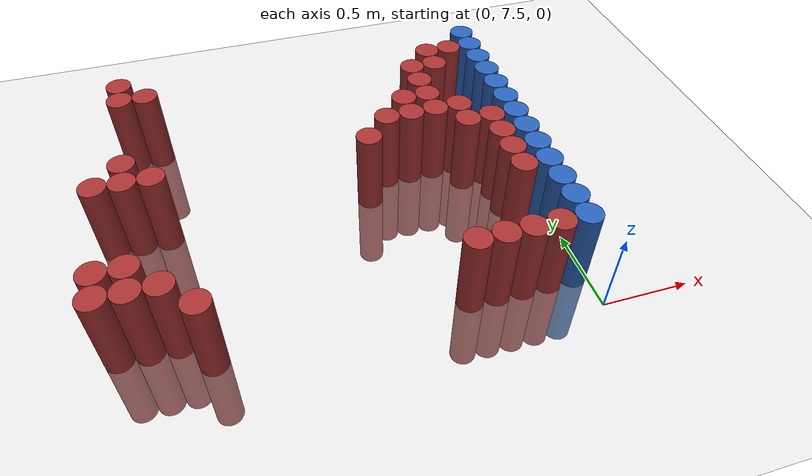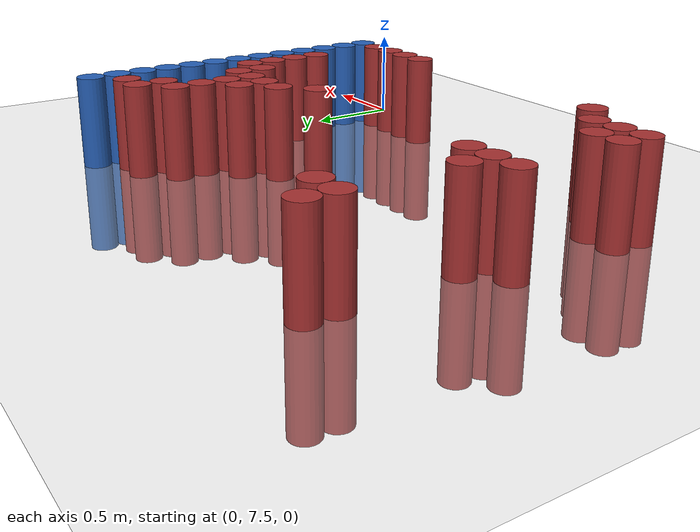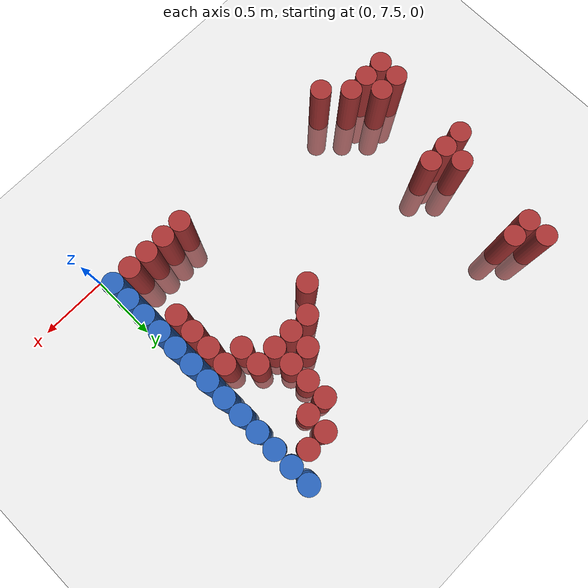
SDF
<sdf version="1.6">
 <world name="default">
  <model name="ground_plane">
   <static>1</static>
   <link name="link">
    <collision name="collision">
     <geometry><plane><normal>0 0 1</normal><size>100 100</size></plane></geometry>
     <surface><friction><ode><mu>100</mu><mu2>50</mu2></ode></friction></surface>
    </collision>
    <visual name="visual">
     <cast_shadows>0</cast_shadows>
     <geometry><plane><normal>0 0 1</normal><size>100 100</size></plane></geometry>
     <material>
      <script><uri>file://media/materials/scripts/gazebo.material</uri><name>Gazebo/Grey</name></script>
     </material>
    </visual>
   </link>
  </model>
  <model name="unit_cylinder_226">
   <static>1</static>
   <pose>-2.475000 7.875000 0.000000 0.000000 0.000000 0.000000</pose>
   <link name="link">
    <inertial>
     <mass>1</mass>
     <inertia><ixx>0.145833</ixx><ixy>0</ixy><ixz>0</ixz><iyy>0.145833</iyy><iyz>0</iyz><izz>0.125</izz></inertia>
    </inertial>
    <collision name="collision">
     <geometry><cylinder><radius>0.075000</radius><length>1</length></cylinder></geometry>
    </collision>
    <visual name="visual">
     <geometry><cylinder><radius>0.075000</radius><length>1</length></cylinder></geometry>
     <material>
      <ambient>0.648000 0.192000 0.192000 1</ambient>
      <diffuse>0.648000 0.192000 0.192000 1</diffuse>
     </material>
     <material>
      <script><name>Gazebo/Grey</name><uri>file://media/materials/scripts/gazebo.material</uri></script>
     </material>
    </visual>
   </link>
  </model>
  <model name="unit_cylinder_227">
   <static>1</static>
   <pose>-2.475000 8.025000 0.000000 0.000000 0.000000 0.000000</pose>
   <link name="link">
    <inertial>
     <mass>1</mass>
     <inertia><ixx>0.145833</ixx><ixy>0</ixy><ixz>0</ixz><iyy>0.145833</iyy><iyz>0</iyz><izz>0.125</izz></inertia>
    </inertial>
    <collision name="collision">
     <geometry><cylinder><radius>0.075000</radius><length>1</length></cylinder></geometry>
    </collision>
    <visual name="visual">
     <geometry><cylinder><radius>0.075000</radius><length>1</length></cylinder></geometry>
     <material>
      <ambient>0.648000 0.192000 0.192000 1</ambient>
      <diffuse>0.648000 0.192000 0.192000 1</diffuse>
     </material>
     <material>
      <script><name>Gazebo/Grey</name><uri>file://media/materials/scripts/gazebo.material</uri></script>
     </material>
    </visual>
   </link>
  </model>
  <model name="unit_cylinder_228">
   <static>1</static>
   <pose>-2.475000 8.625000 0.000000 0.000000 0.000000 0.000000</pose>
   <link name="link">
    <inertial>
     <mass>1</mass>
     <inertia><ixx>0.145833</ixx><ixy>0</ixy><ixz>0</ixz><iyy>0.145833</iyy><iyz>0</iyz><izz>0.125</izz></inertia>
    </inertial>
    <collision name="collision">
     <geometry><cylinder><radius>0.075000</radius><length>1</length></cylinder></geometry>
    </collision>
    <visual name="visual">
     <geometry><cylinder><radius>0.075000</radius><length>1</length></cylinder></geometry>
     <material>
      <ambient>0.648000 0.192000 0.192000 1</ambient>
      <diffuse>0.648000 0.192000 0.192000 1</diffuse>
     </material>
     <material>
      <script><name>Gazebo/Grey</name><uri>file://media/materials/scripts/gazebo.material</uri></script>
     </material>
    </visual>
   </link>
  </model>
  <model name="unit_cylinder_230">
   <static>1</static>
   <pose>-2.325000 7.875000 0.000000 0.000000 0.000000 0.000000</pose>
   <link name="link">
    <inertial>
     <mass>1</mass>
     <inertia><ixx>0.145833</ixx><ixy>0</ixy><ixz>0</ixz><iyy>0.145833</iyy><iyz>0</iyz><izz>0.125</izz></inertia>
    </inertial>
    <collision name="collision">
     <geometry><cylinder><radius>0.075000</radius><length>1</length></cylinder></geometry>
    </collision>
    <visual name="visual">
     <geometry><cylinder><radius>0.075000</radius><length>1</length></cylinder></geometry>
     <material>
      <ambient>0.648000 0.192000 0.192000 1</ambient>
      <diffuse>0.648000 0.192000 0.192000 1</diffuse>
     </material>
     <material>
      <script><name>Gazebo/Grey</name><uri>file://media/materials/scripts/gazebo.material</uri></script>
     </material>
    </visual>
   </link>
  </model>
  <model name="unit_cylinder_231">
   <static>1</static>
   <pose>-2.325000 8.025000 0.000000 0.000000 0.000000 0.000000</pose>
   <link name="link">
    <inertial>
     <mass>1</mass>
     <inertia><ixx>0.145833</ixx><ixy>0</ixy><ixz>0</ixz><iyy>0.145833</iyy><iyz>0</iyz><izz>0.125</izz></inertia>
    </inertial>
    <collision name="collision">
     <geometry><cylinder><radius>0.075000</radius><length>1</length></cylinder></geometry>
    </collision>
    <visual name="visual">
     <geometry><cylinder><radius>0.075000</radius><length>1</length></cylinder></geometry>
     <material>
      <ambient>0.648000 0.192000 0.192000 1</ambient>
      <diffuse>0.648000 0.192000 0.192000 1</diffuse>
     </material>
     <material>
      <script><name>Gazebo/Grey</name><uri>file://media/materials/scripts/gazebo.material</uri></script>
     </material>
    </visual>
   </link>
  </model>
  <model name="unit_cylinder_232">
   <static>1</static>
   <pose>-2.325000 8.625000 0.000000 0.000000 0.000000 0.000000</pose>
   <link name="link">
    <inertial>
     <mass>1</mass>
     <inertia><ixx>0.145833</ixx><ixy>0</ixy><ixz>0</ixz><iyy>0.145833</iyy><iyz>0</iyz><izz>0.125</izz></inertia>
    </inertial>
    <collision name="collision">
     <geometry><cylinder><radius>0.075000</radius><length>1</length></cylinder></geometry>
    </collision>
    <visual name="visual">
     <geometry><cylinder><radius>0.075000</radius><length>1</length></cylinder></geometry>
     <material>
      <ambient>0.648000 0.192000 0.192000 1</ambient>
      <diffuse>0.648000 0.192000 0.192000 1</diffuse>
     </material>
     <material>
      <script><name>Gazebo/Grey</name><uri>file://media/materials/scripts/gazebo.material</uri></script>
     </material>
    </visual>
   </link>
  </model>
  <model name="unit_cylinder_233">
   <static>1</static>
   <pose>-2.325000 8.775000 0.000000 0.000000 0.000000 0.000000</pose>
   <link name="link">
    <inertial>
     <mass>1</mass>
     <inertia><ixx>0.145833</ixx><ixy>0</ixy><ixz>0</ixz><iyy>0.145833</iyy><iyz>0</iyz><izz>0.125</izz></inertia>
    </inertial>
    <collision name="collision">
     <geometry><cylinder><radius>0.075000</radius><length>1</length></cylinder></geometry>
    </collision>
    <visual name="visual">
     <geometry><cylinder><radius>0.075000</radius><length>1</length></cylinder></geometry>
     <material>
      <ambient>0.648000 0.192000 0.192000 1</ambient>
      <diffuse>0.648000 0.192000 0.192000 1</diffuse>
     </material>
     <material>
      <script><name>Gazebo/Grey</name><uri>file://media/materials/scripts/gazebo.material</uri></script>
     </material>
    </visual>
   </link>
  </model>
  <model name="unit_cylinder_234">
   <static>1</static>
   <pose>-2.325000 9.375000 0.000000 0.000000 0.000000 0.000000</pose>
   <link name="link">
    <inertial>
     <mass>1</mass>
     <inertia><ixx>0.145833</ixx><ixy>0</ixy><ixz>0</ixz><iyy>0.145833</iyy><iyz>0</iyz><izz>0.125</izz></inertia>
    </inertial>
    <collision name="collision">
     <geometry><cylinder><radius>0.075000</radius><length>1</length></cylinder></geometry>
    </collision>
    <visual name="visual">
     <geometry><cylinder><radius>0.075000</radius><length>1</length></cylinder></geometry>
     <material>
      <ambient>0.648000 0.192000 0.192000 1</ambient>
      <diffuse>0.648000 0.192000 0.192000 1</diffuse>
     </material>
     <material>
      <script><name>Gazebo/Grey</name><uri>file://media/materials/scripts/gazebo.material</uri></script>
     </material>
    </visual>
   </link>
  </model>
  <model name="unit_cylinder_235">
   <static>1</static>
   <pose>-2.325000 9.525000 0.000000 0.000000 0.000000 0.000000</pose>
   <link name="link">
    <inertial>
     <mass>1</mass>
     <inertia><ixx>0.145833</ixx><ixy>0</ixy><ixz>0</ixz><iyy>0.145833</iyy><iyz>0</iyz><izz>0.125</izz></inertia>
    </inertial>
    <collision name="collision">
     <geometry><cylinder><radius>0.075000</radius><length>1</length></cylinder></geometry>
    </collision>
    <visual name="visual">
     <geometry><cylinder><radius>0.075000</radius><length>1</length></cylinder></geometry>
     <material>
      <ambient>0.648000 0.192000 0.192000 1</ambient>
      <diffuse>0.648000 0.192000 0.192000 1</diffuse>
     </material>
     <material>
      <script><name>Gazebo/Grey</name><uri>file://media/materials/scripts/gazebo.material</uri></script>
     </material>
    </visual>
   </link>
  </model>
  <model name="unit_cylinder_239">
   <static>1</static>
   <pose>-2.175000 7.875000 0.000000 0.000000 0.000000 0.000000</pose>
   <link name="link">
    <inertial>
     <mass>1</mass>
     <inertia><ixx>0.145833</ixx><ixy>0</ixy><ixz>0</ixz><iyy>0.145833</iyy><iyz>0</iyz><izz>0.125</izz></inertia>
    </inertial>
    <collision name="collision">
     <geometry><cylinder><radius>0.075000</radius><length>1</length></cylinder></geometry>
    </collision>
    <visual name="visual">
     <geometry><cylinder><radius>0.075000</radius><length>1</length></cylinder></geometry>
     <material>
      <ambient>0.648000 0.192000 0.192000 1</ambient>
      <diffuse>0.648000 0.192000 0.192000 1</diffuse>
     </material>
     <material>
      <script><name>Gazebo/Grey</name><uri>file://media/materials/scripts/gazebo.material</uri></script>
     </material>
    </visual>
   </link>
  </model>
  <model name="unit_cylinder_240">
   <static>1</static>
   <pose>-2.175000 8.625000 0.000000 0.000000 0.000000 0.000000</pose>
   <link name="link">
    <inertial>
     <mass>1</mass>
     <inertia><ixx>0.145833</ixx><ixy>0</ixy><ixz>0</ixz><iyy>0.145833</iyy><iyz>0</iyz><izz>0.125</izz></inertia>
    </inertial>
    <collision name="collision">
     <geometry><cylinder><radius>0.075000</radius><length>1</length></cylinder></geometry>
    </collision>
    <visual name="visual">
     <geometry><cylinder><radius>0.075000</radius><length>1</length></cylinder></geometry>
     <material>
      <ambient>0.648000 0.192000 0.192000 1</ambient>
      <diffuse>0.648000 0.192000 0.192000 1</diffuse>
     </material>
     <material>
      <script><name>Gazebo/Grey</name><uri>file://media/materials/scripts/gazebo.material</uri></script>
     </material>
    </visual>
   </link>
  </model>
  <model name="unit_cylinder_241">
   <static>1</static>
   <pose>-2.175000 9.375000 0.000000 0.000000 0.000000 0.000000</pose>
   <link name="link">
    <inertial>
     <mass>1</mass>
     <inertia><ixx>0.145833</ixx><ixy>0</ixy><ixz>0</ixz><iyy>0.145833</iyy><iyz>0</iyz><izz>0.125</izz></inertia>
    </inertial>
    <collision name="collision">
     <geometry><cylinder><radius>0.075000</radius><length>1</length></cylinder></geometry>
    </collision>
    <visual name="visual">
     <geometry><cylinder><radius>0.075000</radius><length>1</length></cylinder></geometry>
     <material>
      <ambient>0.648000 0.192000 0.192000 1</ambient>
      <diffuse>0.648000 0.192000 0.192000 1</diffuse>
     </material>
     <material>
      <script><name>Gazebo/Grey</name><uri>file://media/materials/scripts/gazebo.material</uri></script>
     </material>
    </visual>
   </link>
  </model>
  <model name="unit_cylinder_244">
   <static>1</static>
   <pose>-2.025000 7.725000 0.000000 0.000000 0.000000 0.000000</pose>
   <link name="link">
    <inertial>
     <mass>1</mass>
     <inertia><ixx>0.145833</ixx><ixy>0</ixy><ixz>0</ixz><iyy>0.145833</iyy><iyz>0</iyz><izz>0.125</izz></inertia>
    </inertial>
    <collision name="collision">
     <geometry><cylinder><radius>0.075000</radius><length>1</length></cylinder></geometry>
    </collision>
    <visual name="visual">
     <geometry><cylinder><radius>0.075000</radius><length>1</length></cylinder></geometry>
     <material>
      <ambient>0.648000 0.192000 0.192000 1</ambient>
      <diffuse>0.648000 0.192000 0.192000 1</diffuse>
     </material>
     <material>
      <script><name>Gazebo/Grey</name><uri>file://media/materials/scripts/gazebo.material</uri></script>
     </material>
    </visual>
   </link>
  </model>
  <model name="unit_cylinder_255">
   <static>1</static>
   <pose>-0.975000 8.625000 0.000000 0.000000 0.000000 0.000000</pose>
   <link name="link">
    <inertial>
     <mass>1</mass>
     <inertia><ixx>0.145833</ixx><ixy>0</ixy><ixz>0</ixz><iyy>0.145833</iyy><iyz>0</iyz><izz>0.125</izz></inertia>
    </inertial>
    <collision name="collision">
     <geometry><cylinder><radius>0.075000</radius><length>1</length></cylinder></geometry>
    </collision>
    <visual name="visual">
     <geometry><cylinder><radius>0.075000</radius><length>1</length></cylinder></geometry>
     <material>
      <ambient>0.648000 0.192000 0.192000 1</ambient>
      <diffuse>0.648000 0.192000 0.192000 1</diffuse>
     </material>
     <material>
      <script><name>Gazebo/Grey</name><uri>file://media/materials/scripts/gazebo.material</uri></script>
     </material>
    </visual>
   </link>
  </model>
  <model name="unit_cylinder_257">
   <static>1</static>
   <pose>-0.825000 8.775000 0.000000 0.000000 0.000000 0.000000</pose>
   <link name="link">
    <inertial>
     <mass>1</mass>
     <inertia><ixx>0.145833</ixx><ixy>0</ixy><ixz>0</ixz><iyy>0.145833</iyy><iyz>0</iyz><izz>0.125</izz></inertia>
    </inertial>
    <collision name="collision">
     <geometry><cylinder><radius>0.075000</radius><length>1</length></cylinder></geometry>
    </collision>
    <visual name="visual">
     <geometry><cylinder><radius>0.075000</radius><length>1</length></cylinder></geometry>
     <material>
      <ambient>0.648000 0.192000 0.192000 1</ambient>
      <diffuse>0.648000 0.192000 0.192000 1</diffuse>
     </material>
     <material>
      <script><name>Gazebo/Grey</name><uri>file://media/materials/scripts/gazebo.material</uri></script>
     </material>
    </visual>
   </link>
  </model>
  <model name="unit_cylinder_260">
   <static>1</static>
   <pose>-0.675000 7.725000 0.000000 0.000000 0.000000 0.000000</pose>
   <link name="link">
    <inertial>
     <mass>1</mass>
     <inertia><ixx>0.145833</ixx><ixy>0</ixy><ixz>0</ixz><iyy>0.145833</iyy><iyz>0</iyz><izz>0.125</izz></inertia>
    </inertial>
    <collision name="collision">
     <geometry><cylinder><radius>0.075000</radius><length>1</length></cylinder></geometry>
    </collision>
    <visual name="visual">
     <geometry><cylinder><radius>0.075000</radius><length>1</length></cylinder></geometry>
     <material>
      <ambient>0.648000 0.192000 0.192000 1</ambient>
      <diffuse>0.648000 0.192000 0.192000 1</diffuse>
     </material>
     <material>
      <script><name>Gazebo/Grey</name><uri>file://media/materials/scripts/gazebo.material</uri></script>
     </material>
    </visual>
   </link>
  </model>
  <model name="unit_cylinder_261">
   <static>1</static>
   <pose>-0.675000 8.775000 0.000000 0.000000 0.000000 0.000000</pose>
   <link name="link">
    <inertial>
     <mass>1</mass>
     <inertia><ixx>0.145833</ixx><ixy>0</ixy><ixz>0</ixz><iyy>0.145833</iyy><iyz>0</iyz><izz>0.125</izz></inertia>
    </inertial>
    <collision name="collision">
     <geometry><cylinder><radius>0.075000</radius><length>1</length></cylinder></geometry>
    </collision>
    <visual name="visual">
     <geometry><cylinder><radius>0.075000</radius><length>1</length></cylinder></geometry>
     <material>
      <ambient>0.648000 0.192000 0.192000 1</ambient>
      <diffuse>0.648000 0.192000 0.192000 1</diffuse>
     </material>
     <material>
      <script><name>Gazebo/Grey</name><uri>file://media/materials/scripts/gazebo.material</uri></script>
     </material>
    </visual>
   </link>
  </model>
  <model name="unit_cylinder_262">
   <static>1</static>
   <pose>-0.675000 8.925000 0.000000 0.000000 0.000000 0.000000</pose>
   <link name="link">
    <inertial>
     <mass>1</mass>
     <inertia><ixx>0.145833</ixx><ixy>0</ixy><ixz>0</ixz><iyy>0.145833</iyy><iyz>0</iyz><izz>0.125</izz></inertia>
    </inertial>
    <collision name="collision">
     <geometry><cylinder><radius>0.075000</radius><length>1</length></cylinder></geometry>
    </collision>
    <visual name="visual">
     <geometry><cylinder><radius>0.075000</radius><length>1</length></cylinder></geometry>
     <material>
      <ambient>0.648000 0.192000 0.192000 1</ambient>
      <diffuse>0.648000 0.192000 0.192000 1</diffuse>
     </material>
     <material>
      <script><name>Gazebo/Grey</name><uri>file://media/materials/scripts/gazebo.material</uri></script>
     </material>
    </visual>
   </link>
  </model>
  <model name="unit_cylinder_268">
   <static>1</static>
   <pose>-0.525000 7.725000 0.000000 0.000000 0.000000 0.000000</pose>
   <link name="link">
    <inertial>
     <mass>1</mass>
     <inertia><ixx>0.145833</ixx><ixy>0</ixy><ixz>0</ixz><iyy>0.145833</iyy><iyz>0</iyz><izz>0.125</izz></inertia>
    </inertial>
    <collision name="collision">
     <geometry><cylinder><radius>0.075000</radius><length>1</length></cylinder></geometry>
    </collision>
    <visual name="visual">
     <geometry><cylinder><radius>0.075000</radius><length>1</length></cylinder></geometry>
     <material>
      <ambient>0.648000 0.192000 0.192000 1</ambient>
      <diffuse>0.648000 0.192000 0.192000 1</diffuse>
     </material>
     <material>
      <script><name>Gazebo/Grey</name><uri>file://media/materials/scripts/gazebo.material</uri></script>
     </material>
    </visual>
   </link>
  </model>
  <model name="unit_cylinder_269">
   <static>1</static>
   <pose>-0.525000 8.775000 0.000000 0.000000 0.000000 0.000000</pose>
   <link name="link">
    <inertial>
     <mass>1</mass>
     <inertia><ixx>0.145833</ixx><ixy>0</ixy><ixz>0</ixz><iyy>0.145833</iyy><iyz>0</iyz><izz>0.125</izz></inertia>
    </inertial>
    <collision name="collision">
     <geometry><cylinder><radius>0.075000</radius><length>1</length></cylinder></geometry>
    </collision>
    <visual name="visual">
     <geometry><cylinder><radius>0.075000</radius><length>1</length></cylinder></geometry>
     <material>
      <ambient>0.648000 0.192000 0.192000 1</ambient>
      <diffuse>0.648000 0.192000 0.192000 1</diffuse>
     </material>
     <material>
      <script><name>Gazebo/Grey</name><uri>file://media/materials/scripts/gazebo.material</uri></script>
     </material>
    </visual>
   </link>
  </model>
  <model name="unit_cylinder_270">
   <static>1</static>
   <pose>-0.525000 8.925000 0.000000 0.000000 0.000000 0.000000</pose>
   <link name="link">
    <inertial>
     <mass>1</mass>
     <inertia><ixx>0.145833</ixx><ixy>0</ixy><ixz>0</ixz><iyy>0.145833</iyy><iyz>0</iyz><izz>0.125</izz></inertia>
    </inertial>
    <collision name="collision">
     <geometry><cylinder><radius>0.075000</radius><length>1</length></cylinder></geometry>
    </collision>
    <visual name="visual">
     <geometry><cylinder><radius>0.075000</radius><length>1</length></cylinder></geometry>
     <material>
      <ambient>0.648000 0.192000 0.192000 1</ambient>
      <diffuse>0.648000 0.192000 0.192000 1</diffuse>
     </material>
     <material>
      <script><name>Gazebo/Grey</name><uri>file://media/materials/scripts/gazebo.material</uri></script>
     </material>
    </visual>
   </link>
  </model>
  <model name="unit_cylinder_271">
   <static>1</static>
   <pose>-0.525000 9.075000 0.000000 0.000000 0.000000 0.000000</pose>
   <link name="link">
    <inertial>
     <mass>1</mass>
     <inertia><ixx>0.145833</ixx><ixy>0</ixy><ixz>0</ixz><iyy>0.145833</iyy><iyz>0</iyz><izz>0.125</izz></inertia>
    </inertial>
    <collision name="collision">
     <geometry><cylinder><radius>0.075000</radius><length>1</length></cylinder></geometry>
    </collision>
    <visual name="visual">
     <geometry><cylinder><radius>0.075000</radius><length>1</length></cylinder></geometry>
     <material>
      <ambient>0.648000 0.192000 0.192000 1</ambient>
      <diffuse>0.648000 0.192000 0.192000 1</diffuse>
     </material>
     <material>
      <script><name>Gazebo/Grey</name><uri>file://media/materials/scripts/gazebo.material</uri></script>
     </material>
    </visual>
   </link>
  </model>
  <model name="unit_cylinder_272">
   <static>1</static>
   <pose>-0.525000 9.225000 0.000000 0.000000 0.000000 0.000000</pose>
   <link name="link">
    <inertial>
     <mass>1</mass>
     <inertia><ixx>0.145833</ixx><ixy>0</ixy><ixz>0</ixz><iyy>0.145833</iyy><iyz>0</iyz><izz>0.125</izz></inertia>
    </inertial>
    <collision name="collision">
     <geometry><cylinder><radius>0.075000</radius><length>1</length></cylinder></geometry>
    </collision>
    <visual name="visual">
     <geometry><cylinder><radius>0.075000</radius><length>1</length></cylinder></geometry>
     <material>
      <ambient>0.648000 0.192000 0.192000 1</ambient>
      <diffuse>0.648000 0.192000 0.192000 1</diffuse>
     </material>
     <material>
      <script><name>Gazebo/Grey</name><uri>file://media/materials/scripts/gazebo.material</uri></script>
     </material>
    </visual>
   </link>
  </model>
  <model name="unit_cylinder_281">
   <static>1</static>
   <pose>-0.375000 7.725000 0.000000 0.000000 0.000000 0.000000</pose>
   <link name="link">
    <inertial>
     <mass>1</mass>
     <inertia><ixx>0.145833</ixx><ixy>0</ixy><ixz>0</ixz><iyy>0.145833</iyy><iyz>0</iyz><izz>0.125</izz></inertia>
    </inertial>
    <collision name="collision">
     <geometry><cylinder><radius>0.075000</radius><length>1</length></cylinder></geometry>
    </collision>
    <visual name="visual">
     <geometry><cylinder><radius>0.075000</radius><length>1</length></cylinder></geometry>
     <material>
      <ambient>0.648000 0.192000 0.192000 1</ambient>
      <diffuse>0.648000 0.192000 0.192000 1</diffuse>
     </material>
     <material>
      <script><name>Gazebo/Grey</name><uri>file://media/materials/scripts/gazebo.material</uri></script>
     </material>
    </visual>
   </link>
  </model>
  <model name="unit_cylinder_282">
   <static>1</static>
   <pose>-0.375000 8.625000 0.000000 0.000000 0.000000 0.000000</pose>
   <link name="link">
    <inertial>
     <mass>1</mass>
     <inertia><ixx>0.145833</ixx><ixy>0</ixy><ixz>0</ixz><iyy>0.145833</iyy><iyz>0</iyz><izz>0.125</izz></inertia>
    </inertial>
    <collision name="collision">
     <geometry><cylinder><radius>0.075000</radius><length>1</length></cylinder></geometry>
    </collision>
    <visual name="visual">
     <geometry><cylinder><radius>0.075000</radius><length>1</length></cylinder></geometry>
     <material>
      <ambient>0.648000 0.192000 0.192000 1</ambient>
      <diffuse>0.648000 0.192000 0.192000 1</diffuse>
     </material>
     <material>
      <script><name>Gazebo/Grey</name><uri>file://media/materials/scripts/gazebo.material</uri></script>
     </material>
    </visual>
   </link>
  </model>
  <model name="unit_cylinder_283">
   <static>1</static>
   <pose>-0.375000 8.775000 0.000000 0.000000 0.000000 0.000000</pose>
   <link name="link">
    <inertial>
     <mass>1</mass>
     <inertia><ixx>0.145833</ixx><ixy>0</ixy><ixz>0</ixz><iyy>0.145833</iyy><iyz>0</iyz><izz>0.125</izz></inertia>
    </inertial>
    <collision name="collision">
     <geometry><cylinder><radius>0.075000</radius><length>1</length></cylinder></geometry>
    </collision>
    <visual name="visual">
     <geometry><cylinder><radius>0.075000</radius><length>1</length></cylinder></geometry>
     <material>
      <ambient>0.648000 0.192000 0.192000 1</ambient>
      <diffuse>0.648000 0.192000 0.192000 1</diffuse>
     </material>
     <material>
      <script><name>Gazebo/Grey</name><uri>file://media/materials/scripts/gazebo.material</uri></script>
     </material>
    </visual>
   </link>
  </model>
  <model name="unit_cylinder_284">
   <static>1</static>
   <pose>-0.375000 9.225000 0.000000 0.000000 0.000000 0.000000</pose>
   <link name="link">
    <inertial>
     <mass>1</mass>
     <inertia><ixx>0.145833</ixx><ixy>0</ixy><ixz>0</ixz><iyy>0.145833</iyy><iyz>0</iyz><izz>0.125</izz></inertia>
    </inertial>
    <collision name="collision">
     <geometry><cylinder><radius>0.075000</radius><length>1</length></cylinder></geometry>
    </collision>
    <visual name="visual">
     <geometry><cylinder><radius>0.075000</radius><length>1</length></cylinder></geometry>
     <material>
      <ambient>0.648000 0.192000 0.192000 1</ambient>
      <diffuse>0.648000 0.192000 0.192000 1</diffuse>
     </material>
     <material>
      <script><name>Gazebo/Grey</name><uri>file://media/materials/scripts/gazebo.material</uri></script>
     </material>
    </visual>
   </link>
  </model>
  <model name="unit_cylinder_285">
   <static>1</static>
   <pose>-0.375000 9.375000 0.000000 0.000000 0.000000 0.000000</pose>
   <link name="link">
    <inertial>
     <mass>1</mass>
     <inertia><ixx>0.145833</ixx><ixy>0</ixy><ixz>0</ixz><iyy>0.145833</iyy><iyz>0</iyz><izz>0.125</izz></inertia>
    </inertial>
    <collision name="collision">
     <geometry><cylinder><radius>0.075000</radius><length>1</length></cylinder></geometry>
    </collision>
    <visual name="visual">
     <geometry><cylinder><radius>0.075000</radius><length>1</length></cylinder></geometry>
     <material>
      <ambient>0.648000 0.192000 0.192000 1</ambient>
      <diffuse>0.648000 0.192000 0.192000 1</diffuse>
     </material>
     <material>
      <script><name>Gazebo/Grey</name><uri>file://media/materials/scripts/gazebo.material</uri></script>
     </material>
    </visual>
   </link>
  </model>
  <model name="unit_cylinder_293">
   <static>1</static>
   <pose>-0.225000 7.725000 0.000000 0.000000 0.000000 0.000000</pose>
   <link name="link">
    <inertial>
     <mass>1</mass>
     <inertia><ixx>0.145833</ixx><ixy>0</ixy><ixz>0</ixz><iyy>0.145833</iyy><iyz>0</iyz><izz>0.125</izz></inertia>
    </inertial>
    <collision name="collision">
     <geometry><cylinder><radius>0.075000</radius><length>1</length></cylinder></geometry>
    </collision>
    <visual name="visual">
     <geometry><cylinder><radius>0.075000</radius><length>1</length></cylinder></geometry>
     <material>
      <ambient>0.648000 0.192000 0.192000 1</ambient>
      <diffuse>0.648000 0.192000 0.192000 1</diffuse>
     </material>
     <material>
      <script><name>Gazebo/Grey</name><uri>file://media/materials/scripts/gazebo.material</uri></script>
     </material>
    </visual>
   </link>
  </model>
  <model name="unit_cylinder_294">
   <static>1</static>
   <pose>-0.225000 8.175000 0.000000 0.000000 0.000000 0.000000</pose>
   <link name="link">
    <inertial>
     <mass>1</mass>
     <inertia><ixx>0.145833</ixx><ixy>0</ixy><ixz>0</ixz><iyy>0.145833</iyy><iyz>0</iyz><izz>0.125</izz></inertia>
    </inertial>
    <collision name="collision">
     <geometry><cylinder><radius>0.075000</radius><length>1</length></cylinder></geometry>
    </collision>
    <visual name="visual">
     <geometry><cylinder><radius>0.075000</radius><length>1</length></cylinder></geometry>
     <material>
      <ambient>0.648000 0.192000 0.192000 1</ambient>
      <diffuse>0.648000 0.192000 0.192000 1</diffuse>
     </material>
     <material>
      <script><name>Gazebo/Grey</name><uri>file://media/materials/scripts/gazebo.material</uri></script>
     </material>
    </visual>
   </link>
  </model>
  <model name="unit_cylinder_295">
   <static>1</static>
   <pose>-0.225000 8.325000 0.000000 0.000000 0.000000 0.000000</pose>
   <link name="link">
    <inertial>
     <mass>1</mass>
     <inertia><ixx>0.145833</ixx><ixy>0</ixy><ixz>0</ixz><iyy>0.145833</iyy><iyz>0</iyz><izz>0.125</izz></inertia>
    </inertial>
    <collision name="collision">
     <geometry><cylinder><radius>0.075000</radius><length>1</length></cylinder></geometry>
    </collision>
    <visual name="visual">
     <geometry><cylinder><radius>0.075000</radius><length>1</length></cylinder></geometry>
     <material>
      <ambient>0.648000 0.192000 0.192000 1</ambient>
      <diffuse>0.648000 0.192000 0.192000 1</diffuse>
     </material>
     <material>
      <script><name>Gazebo/Grey</name><uri>file://media/materials/scripts/gazebo.material</uri></script>
     </material>
    </visual>
   </link>
  </model>
  <model name="unit_cylinder_296">
   <static>1</static>
   <pose>-0.225000 8.475000 0.000000 0.000000 0.000000 0.000000</pose>
   <link name="link">
    <inertial>
     <mass>1</mass>
     <inertia><ixx>0.145833</ixx><ixy>0</ixy><ixz>0</ixz><iyy>0.145833</iyy><iyz>0</iyz><izz>0.125</izz></inertia>
    </inertial>
    <collision name="collision">
     <geometry><cylinder><radius>0.075000</radius><length>1</length></cylinder></geometry>
    </collision>
    <visual name="visual">
     <geometry><cylinder><radius>0.075000</radius><length>1</length></cylinder></geometry>
     <material>
      <ambient>0.648000 0.192000 0.192000 1</ambient>
      <diffuse>0.648000 0.192000 0.192000 1</diffuse>
     </material>
     <material>
      <script><name>Gazebo/Grey</name><uri>file://media/materials/scripts/gazebo.material</uri></script>
     </material>
    </visual>
   </link>
  </model>
  <model name="unit_cylinder_297">
   <static>1</static>
   <pose>-0.225000 8.625000 0.000000 0.000000 0.000000 0.000000</pose>
   <link name="link">
    <inertial>
     <mass>1</mass>
     <inertia><ixx>0.145833</ixx><ixy>0</ixy><ixz>0</ixz><iyy>0.145833</iyy><iyz>0</iyz><izz>0.125</izz></inertia>
    </inertial>
    <collision name="collision">
     <geometry><cylinder><radius>0.075000</radius><length>1</length></cylinder></geometry>
    </collision>
    <visual name="visual">
     <geometry><cylinder><radius>0.075000</radius><length>1</length></cylinder></geometry>
     <material>
      <ambient>0.648000 0.192000 0.192000 1</ambient>
      <diffuse>0.648000 0.192000 0.192000 1</diffuse>
     </material>
     <material>
      <script><name>Gazebo/Grey</name><uri>file://media/materials/scripts/gazebo.material</uri></script>
     </material>
    </visual>
   </link>
  </model>
  <model name="unit_cylinder_298">
   <static>1</static>
   <pose>-0.225000 9.375000 0.000000 0.000000 0.000000 0.000000</pose>
   <link name="link">
    <inertial>
     <mass>1</mass>
     <inertia><ixx>0.145833</ixx><ixy>0</ixy><ixz>0</ixz><iyy>0.145833</iyy><iyz>0</iyz><izz>0.125</izz></inertia>
    </inertial>
    <collision name="collision">
     <geometry><cylinder><radius>0.075000</radius><length>1</length></cylinder></geometry>
    </collision>
    <visual name="visual">
     <geometry><cylinder><radius>0.075000</radius><length>1</length></cylinder></geometry>
     <material>
      <ambient>0.648000 0.192000 0.192000 1</ambient>
      <diffuse>0.648000 0.192000 0.192000 1</diffuse>
     </material>
     <material>
      <script><name>Gazebo/Grey</name><uri>file://media/materials/scripts/gazebo.material</uri></script>
     </material>
    </visual>
   </link>
  </model>
  <model name="unit_cylinder_316">
   <static>1</static>
   <pose>-0.075000 7.725000 0.000000 0.000000 0.000000 0.000000</pose>
   <link name="link">
    <inertial>
     <mass>1</mass>
     <inertia><ixx>0.145833</ixx><ixy>0</ixy><ixz>0</ixz><iyy>0.145833</iyy><iyz>0</iyz><izz>0.125</izz></inertia>
    </inertial>
    <collision name="collision">
     <geometry><cylinder><radius>0.075000</radius><length>1</length></cylinder></geometry>
    </collision>
    <visual name="visual">
     <geometry><cylinder><radius>0.075000</radius><length>1</length></cylinder></geometry>
     <material>
      <ambient>0.152000 0.379000 0.720000 1</ambient>
      <diffuse>0.152000 0.379000 0.720000 1</diffuse>
     </material>
     <material>
      <script><name>Gazebo/Grey</name><uri>file://media/materials/scripts/gazebo.material</uri></script>
     </material>
    </visual>
   </link>
  </model>
  <model name="unit_cylinder_317">
   <static>1</static>
   <pose>-0.075000 7.875000 0.000000 0.000000 0.000000 0.000000</pose>
   <link name="link">
    <inertial>
     <mass>1</mass>
     <inertia><ixx>0.145833</ixx><ixy>0</ixy><ixz>0</ixz><iyy>0.145833</iyy><iyz>0</iyz><izz>0.125</izz></inertia>
    </inertial>
    <collision name="collision">
     <geometry><cylinder><radius>0.075000</radius><length>1</length></cylinder></geometry>
    </collision>
    <visual name="visual">
     <geometry><cylinder><radius>0.075000</radius><length>1</length></cylinder></geometry>
     <material>
      <ambient>0.152000 0.379000 0.720000 1</ambient>
      <diffuse>0.152000 0.379000 0.720000 1</diffuse>
     </material>
     <material>
      <script><name>Gazebo/Grey</name><uri>file://media/materials/scripts/gazebo.material</uri></script>
     </material>
    </visual>
   </link>
  </model>
  <model name="unit_cylinder_318">
   <static>1</static>
   <pose>-0.075000 8.025000 0.000000 0.000000 0.000000 0.000000</pose>
   <link name="link">
    <inertial>
     <mass>1</mass>
     <inertia><ixx>0.145833</ixx><ixy>0</ixy><ixz>0</ixz><iyy>0.145833</iyy><iyz>0</iyz><izz>0.125</izz></inertia>
    </inertial>
    <collision name="collision">
     <geometry><cylinder><radius>0.075000</radius><length>1</length></cylinder></geometry>
    </collision>
    <visual name="visual">
     <geometry><cylinder><radius>0.075000</radius><length>1</length></cylinder></geometry>
     <material>
      <ambient>0.152000 0.379000 0.720000 1</ambient>
      <diffuse>0.152000 0.379000 0.720000 1</diffuse>
     </material>
     <material>
      <script><name>Gazebo/Grey</name><uri>file://media/materials/scripts/gazebo.material</uri></script>
     </material>
    </visual>
   </link>
  </model>
  <model name="unit_cylinder_319">
   <static>1</static>
   <pose>-0.075000 8.175000 0.000000 0.000000 0.000000 0.000000</pose>
   <link name="link">
    <inertial>
     <mass>1</mass>
     <inertia><ixx>0.145833</ixx><ixy>0</ixy><ixz>0</ixz><iyy>0.145833</iyy><iyz>0</iyz><izz>0.125</izz></inertia>
    </inertial>
    <collision name="collision">
     <geometry><cylinder><radius>0.075000</radius><length>1</length></cylinder></geometry>
    </collision>
    <visual name="visual">
     <geometry><cylinder><radius>0.075000</radius><length>1</length></cylinder></geometry>
     <material>
      <ambient>0.152000 0.379000 0.720000 1</ambient>
      <diffuse>0.152000 0.379000 0.720000 1</diffuse>
     </material>
     <material>
      <script><name>Gazebo/Grey</name><uri>file://media/materials/scripts/gazebo.material</uri></script>
     </material>
    </visual>
   </link>
  </model>
  <model name="unit_cylinder_320">
   <static>1</static>
   <pose>-0.075000 8.325000 0.000000 0.000000 0.000000 0.000000</pose>
   <link name="link">
    <inertial>
     <mass>1</mass>
     <inertia><ixx>0.145833</ixx><ixy>0</ixy><ixz>0</ixz><iyy>0.145833</iyy><iyz>0</iyz><izz>0.125</izz></inertia>
    </inertial>
    <collision name="collision">
     <geometry><cylinder><radius>0.075000</radius><length>1</length></cylinder></geometry>
    </collision>
    <visual name="visual">
     <geometry><cylinder><radius>0.075000</radius><length>1</length></cylinder></geometry>
     <material>
      <ambient>0.152000 0.379000 0.720000 1</ambient>
      <diffuse>0.152000 0.379000 0.720000 1</diffuse>
     </material>
     <material>
      <script><name>Gazebo/Grey</name><uri>file://media/materials/scripts/gazebo.material</uri></script>
     </material>
    </visual>
   </link>
  </model>
  <model name="unit_cylinder_321">
   <static>1</static>
   <pose>-0.075000 8.475000 0.000000 0.000000 0.000000 0.000000</pose>
   <link name="link">
    <inertial>
     <mass>1</mass>
     <inertia><ixx>0.145833</ixx><ixy>0</ixy><ixz>0</ixz><iyy>0.145833</iyy><iyz>0</iyz><izz>0.125</izz></inertia>
    </inertial>
    <collision name="collision">
     <geometry><cylinder><radius>0.075000</radius><length>1</length></cylinder></geometry>
    </collision>
    <visual name="visual">
     <geometry><cylinder><radius>0.075000</radius><length>1</length></cylinder></geometry>
     <material>
      <ambient>0.152000 0.379000 0.720000 1</ambient>
      <diffuse>0.152000 0.379000 0.720000 1</diffuse>
     </material>
     <material>
      <script><name>Gazebo/Grey</name><uri>file://media/materials/scripts/gazebo.material</uri></script>
     </material>
    </visual>
   </link>
  </model>
  <model name="unit_cylinder_322">
   <static>1</static>
   <pose>-0.075000 8.625000 0.000000 0.000000 0.000000 0.000000</pose>
   <link name="link">
    <inertial>
     <mass>1</mass>
     <inertia><ixx>0.145833</ixx><ixy>0</ixy><ixz>0</ixz><iyy>0.145833</iyy><iyz>0</iyz><izz>0.125</izz></inertia>
    </inertial>
    <collision name="collision">
     <geometry><cylinder><radius>0.075000</radius><length>1</length></cylinder></geometry>
    </collision>
    <visual name="visual">
     <geometry><cylinder><radius>0.075000</radius><length>1</length></cylinder></geometry>
     <material>
      <ambient>0.152000 0.379000 0.720000 1</ambient>
      <diffuse>0.152000 0.379000 0.720000 1</diffuse>
     </material>
     <material>
      <script><name>Gazebo/Grey</name><uri>file://media/materials/scripts/gazebo.material</uri></script>
     </material>
    </visual>
   </link>
  </model>
  <model name="unit_cylinder_323">
   <static>1</static>
   <pose>-0.075000 8.775000 0.000000 0.000000 0.000000 0.000000</pose>
   <link name="link">
    <inertial>
     <mass>1</mass>
     <inertia><ixx>0.145833</ixx><ixy>0</ixy><ixz>0</ixz><iyy>0.145833</iyy><iyz>0</iyz><izz>0.125</izz></inertia>
    </inertial>
    <collision name="collision">
     <geometry><cylinder><radius>0.075000</radius><length>1</length></cylinder></geometry>
    </collision>
    <visual name="visual">
     <geometry><cylinder><radius>0.075000</radius><length>1</length></cylinder></geometry>
     <material>
      <ambient>0.152000 0.379000 0.720000 1</ambient>
      <diffuse>0.152000 0.379000 0.720000 1</diffuse>
     </material>
     <material>
      <script><name>Gazebo/Grey</name><uri>file://media/materials/scripts/gazebo.material</uri></script>
     </material>
    </visual>
   </link>
  </model>
  <model name="unit_cylinder_324">
   <static>1</static>
   <pose>-0.075000 8.925000 0.000000 0.000000 0.000000 0.000000</pose>
   <link name="link">
    <inertial>
     <mass>1</mass>
     <inertia><ixx>0.145833</ixx><ixy>0</ixy><ixz>0</ixz><iyy>0.145833</iyy><iyz>0</iyz><izz>0.125</izz></inertia>
    </inertial>
    <collision name="collision">
     <geometry><cylinder><radius>0.075000</radius><length>1</length></cylinder></geometry>
    </collision>
    <visual name="visual">
     <geometry><cylinder><radius>0.075000</radius><length>1</length></cylinder></geometry>
     <material>
      <ambient>0.152000 0.379000 0.720000 1</ambient>
      <diffuse>0.152000 0.379000 0.720000 1</diffuse>
     </material>
     <material>
      <script><name>Gazebo/Grey</name><uri>file://media/materials/scripts/gazebo.material</uri></script>
     </material>
    </visual>
   </link>
  </model>
  <model name="unit_cylinder_325">
   <static>1</static>
   <pose>-0.075000 9.075000 0.000000 0.000000 0.000000 0.000000</pose>
   <link name="link">
    <inertial>
     <mass>1</mass>
     <inertia><ixx>0.145833</ixx><ixy>0</ixy><ixz>0</ixz><iyy>0.145833</iyy><iyz>0</iyz><izz>0.125</izz></inertia>
    </inertial>
    <collision name="collision">
     <geometry><cylinder><radius>0.075000</radius><length>1</length></cylinder></geometry>
    </collision>
    <visual name="visual">
     <geometry><cylinder><radius>0.075000</radius><length>1</length></cylinder></geometry>
     <material>
      <ambient>0.152000 0.379000 0.720000 1</ambient>
      <diffuse>0.152000 0.379000 0.720000 1</diffuse>
     </material>
     <material>
      <script><name>Gazebo/Grey</name><uri>file://media/materials/scripts/gazebo.material</uri></script>
     </material>
    </visual>
   </link>
  </model>
  <model name="unit_cylinder_326">
   <static>1</static>
   <pose>-0.075000 9.225000 0.000000 0.000000 0.000000 0.000000</pose>
   <link name="link">
    <inertial>
     <mass>1</mass>
     <inertia><ixx>0.145833</ixx><ixy>0</ixy><ixz>0</ixz><iyy>0.145833</iyy><iyz>0</iyz><izz>0.125</izz></inertia>
    </inertial>
    <collision name="collision">
     <geometry><cylinder><radius>0.075000</radius><length>1</length></cylinder></geometry>
    </collision>
    <visual name="visual">
     <geometry><cylinder><radius>0.075000</radius><length>1</length></cylinder></geometry>
     <material>
      <ambient>0.152000 0.379000 0.720000 1</ambient>
      <diffuse>0.152000 0.379000 0.720000 1</diffuse>
     </material>
     <material>
      <script><name>Gazebo/Grey</name><uri>file://media/materials/scripts/gazebo.material</uri></script>
     </material>
    </visual>
   </link>
  </model>
  <model name="unit_cylinder_327">
   <static>1</static>
   <pose>-0.075000 9.375000 0.000000 0.000000 0.000000 0.000000</pose>
   <link name="link">
    <inertial>
     <mass>1</mass>
     <inertia><ixx>0.145833</ixx><ixy>0</ixy><ixz>0</ixz><iyy>0.145833</iyy><iyz>0</iyz><izz>0.125</izz></inertia>
    </inertial>
    <collision name="collision">
     <geometry><cylinder><radius>0.075000</radius><length>1</length></cylinder></geometry>
    </collision>
    <visual name="visual">
     <geometry><cylinder><radius>0.075000</radius><length>1</length></cylinder></geometry>
     <material>
      <ambient>0.152000 0.379000 0.720000 1</ambient>
      <diffuse>0.152000 0.379000 0.720000 1</diffuse>
     </material>
     <material>
      <script><name>Gazebo/Grey</name><uri>file://media/materials/scripts/gazebo.material</uri></script>
     </material>
    </visual>
   </link>
  </model>
  <model name="unit_cylinder_328">
   <static>1</static>
   <pose>-0.075000 9.525000 0.000000 0.000000 0.000000 0.000000</pose>
   <link name="link">
    <inertial>
     <mass>1</mass>
     <inertia><ixx>0.145833</ixx><ixy>0</ixy><ixz>0</ixz><iyy>0.145833</iyy><iyz>0</iyz><izz>0.125</izz></inertia>
    </inertial>
    <collision name="collision">
     <geometry><cylinder><radius>0.075000</radius><length>1</length></cylinder></geometry>
    </collision>
    <visual name="visual">
     <geometry><cylinder><radius>0.075000</radius><length>1</length></cylinder></geometry>
     <material>
      <ambient>0.152000 0.379000 0.720000 1</ambient>
      <diffuse>0.152000 0.379000 0.720000 1</diffuse>
     </material>
     <material>
      <script><name>Gazebo/Grey</name><uri>file://media/materials/scripts/gazebo.material</uri></script>
     </material>
    </visual>
   </link>
  </model>
 </world>
</sdf>
